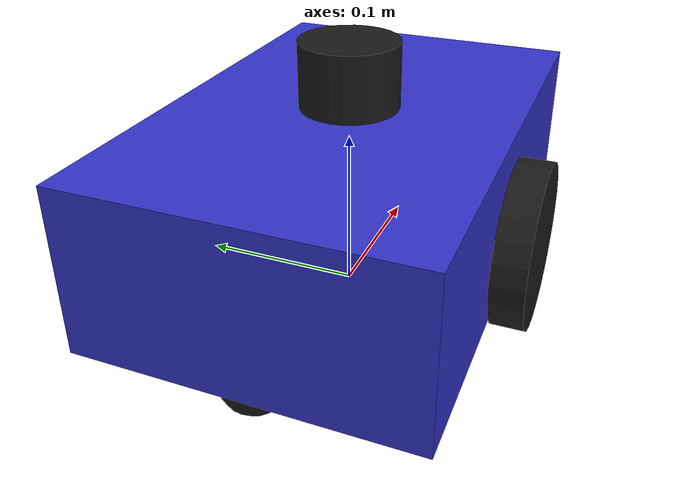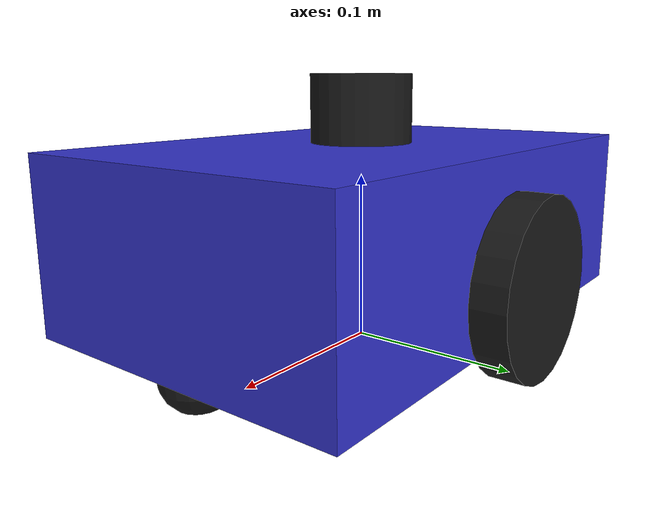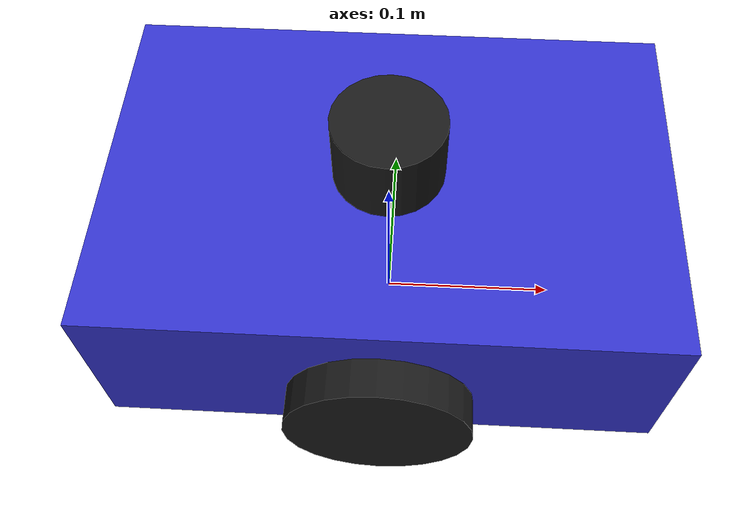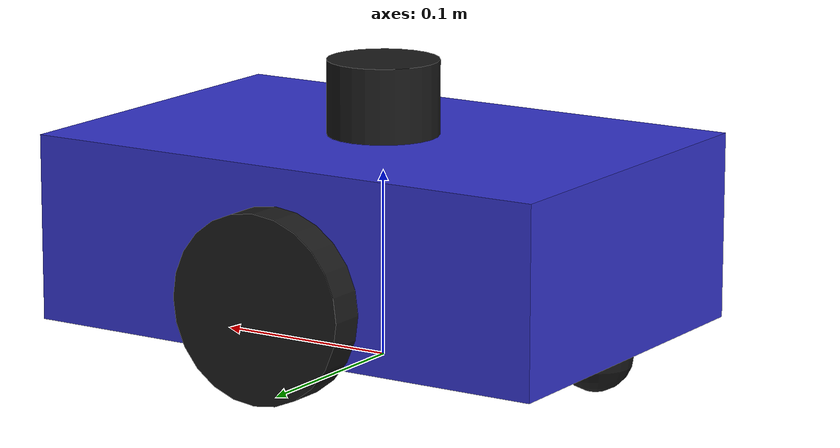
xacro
<?xml version="1.0"?>
<robot name="diffdrive_robot" xmlns:xacro="http://www.ros.org/wiki/xacro">

    <xacro:property name="chassis_length" value="0.3"/>
    <xacro:property name="chassis_width" value="0.2"/>
    <xacro:property name="chassis_height" value="0.1"/>
    <xacro:property name="chassis_mass" value="2.0"/>

    <xacro:property name="wheel_radius" value="0.05"/>
    <xacro:property name="wheel_width" value="0.02"/>
    <xacro:property name="wheel_mass" value="0.2"/>
    <xacro:property name="wheel_y_offset" value="${chassis_width/2 + wheel_width/2}"/>

    <xacro:property name="ground_clearance" value="0.02"/>
    <xacro:property name="base_link_height" value="${ground_clearance + chassis_height/2}"/>
    <xacro:property name="wheel_z_offset" value="${wheel_radius - base_link_height}"/>

    <xacro:property name="wheel_ixx" value="${(1/12) * wheel_mass * (3*wheel_radius*wheel_radius + wheel_width*wheel_width)}"/>
    <xacro:property name="wheel_izz" value="${0.5 * wheel_mass * wheel_radius * wheel_radius}"/>

    <xacro:property name="caster_radius" value="0.02"/>
    <xacro:property name="caster_mass" value="0.05"/>
    <xacro:property name="caster_x_offset" value="${-(chassis_length/2 - caster_radius)}"/>
    <xacro:property name="front_caster_x_offset" value="${chassis_length/2 - caster_radius}"/>
    <xacro:property name="caster_z_offset" value="${caster_radius - base_link_height}"/>
    <xacro:property name="caster_inertia" value="${(2/5) * caster_mass * caster_radius * caster_radius}"/>

    <xacro:property name="lidar_radius" value="0.03"/>
    <xacro:property name="lidar_height" value="0.04"/>
    <xacro:property name="lidar_mass" value="0.05"/>
    <xacro:property name="lidar_z_offset" value="${chassis_height/2 + lidar_height/2}"/>
    <xacro:property name="lidar_ixx" value="${(1/12) * lidar_mass * (3*lidar_radius*lidar_radius + lidar_height*lidar_height)}"/>
    <xacro:property name="lidar_izz" value="${0.5 * lidar_mass * lidar_radius * lidar_radius}"/>

    <material name="blue">
        <color rgba="0.2 0.2 0.8 1.0"/>
    </material>
    <material name="black">
        <color rgba="0.1 0.1 0.1 1.0"/>
    </material>

    <link name="base_footprint"/>

    <joint name="base_footprint_joint" type="fixed">
        <parent link="base_footprint"/>
        <child link="base_link"/>
        <origin xyz="0 0 ${base_link_height}" rpy="0 0 0"/>
    </joint>

    <link name="base_link">
        <visual>
            <geometry>
                <box size="${chassis_length} ${chassis_width} ${chassis_height}"/>
            </geometry>
            <material name="blue"/>
        </visual>
        <collision>
            <geometry>
                <box size="${chassis_length} ${chassis_width} ${chassis_height}"/>
            </geometry>
        </collision>
        <inertial>
            <mass value="${chassis_mass}"/>
            <inertia ixx="0.01" ixy="0.0" ixz="0.0" iyy="0.02" iyz="0.0" izz="0.02"/>
        </inertial>
    </link>

    <link name="left_wheel">
        <visual>
            <origin xyz="0 0 0" rpy="1.5708 0 0"/>
            <geometry>
                <cylinder radius="${wheel_radius}" length="${wheel_width}"/>
            </geometry>
            <material name="black"/>
        </visual>
        <collision>
            <origin xyz="0 0 0" rpy="1.5708 0 0"/>
            <geometry>
                <cylinder radius="${wheel_radius}" length="${wheel_width}"/>
            </geometry>
        </collision>
        <inertial>
            <origin xyz="0 0 0" rpy="1.5708 0 0"/>
            <mass value="${wheel_mass}"/>
            <inertia
                ixx="${(1/12) * wheel_mass * (3*wheel_radius*wheel_radius + wheel_width*wheel_width)}"
                ixy="0.0" ixz="0.0"
                iyy="${(1/12) * wheel_mass * (3*wheel_radius*wheel_radius + wheel_width*wheel_width)}"
                iyz="0.0"
                izz="${0.5 * wheel_mass * wheel_radius * wheel_radius}"/>
        </inertial>
    </link>

    <joint name="left_wheel_joint" type="continuous">
        <parent link="base_link"/>
        <child link="left_wheel"/>
        <origin xyz="0 ${wheel_y_offset} ${wheel_z_offset}" rpy="0 0 0"/>
        <axis xyz="0 1 0"/>
    </joint>

    <link name="right_wheel">
        <visual>
            <origin xyz="0 0 0" rpy="1.5708 0 0"/>
            <geometry>
                <cylinder radius="${wheel_radius}" length="${wheel_width}"/>
            </geometry>
            <material name="black"/>
        </visual>
        <collision>
            <origin xyz="0 0 0" rpy="1.5708 0 0"/>
            <geometry>
                <cylinder radius="${wheel_radius}" length="${wheel_width}"/>
            </geometry>
        </collision>
        <inertial>
            <origin xyz="0 0 0" rpy="1.5708 0 0"/>
            <mass value="${wheel_mass}"/>
            <inertia ixx="${wheel_ixx}" ixy="0.0" ixz="0.0" iyy="${wheel_ixx}" iyz="0.0" izz="${wheel_izz}"/>
        </inertial>
    </link>

    <joint name="right_wheel_joint" type="continuous">
        <parent link="base_link"/>
        <child link="right_wheel"/>
        <origin xyz="0 ${-wheel_y_offset} ${wheel_z_offset}" rpy="0 0 0"/>
        <axis xyz="0 1 0"/>
    </joint>

    <link name="caster_wheel">
        <visual>
            <geometry>
                <sphere radius="${caster_radius}"/>
            </geometry>
            <material name="black"/>
        </visual>
        <collision>
            <geometry>
                <sphere radius="${caster_radius}"/>
            </geometry>
        </collision>
        <inertial>
            <mass value="${caster_mass}"/>
            <inertia ixx="${caster_inertia}" ixy="0.0" ixz="0.0" iyy="${caster_inertia}" iyz="0.0" izz="${caster_inertia}"/>
        </inertial>
    </link>

    <joint name="caster_wheel_joint" type="fixed">
        <parent link="base_link"/>
        <child link="caster_wheel"/>
        <origin xyz="${caster_x_offset} 0 ${caster_z_offset}" rpy="0 0 0"/>
    </joint>

    <link name="front_caster_wheel">
        <visual>
            <geometry>
                <sphere radius="${caster_radius}"/>
            </geometry>
            <material name="black"/>
        </visual>
        <collision>
            <geometry>
                <sphere radius="${caster_radius}"/>
            </geometry>
        </collision>
        <inertial>
            <mass value="${caster_mass}"/>
            <inertia ixx="${caster_inertia}" ixy="0.0" ixz="0.0" iyy="${caster_inertia}" iyz="0.0" izz="${caster_inertia}"/>
        </inertial>
    </link>

    <joint name="front_caster_wheel_joint" type="fixed">
        <parent link="base_link"/>
        <child link="front_caster_wheel"/>
        <origin xyz="${front_caster_x_offset} 0 ${caster_z_offset}" rpy="0 0 0"/>
    </joint>

    <link name="lidar_link">
        <visual>
            <geometry>
                <cylinder radius="${lidar_radius}" length="${lidar_height}"/>
            </geometry>
            <material name="black"/>
        </visual>
        <collision>
            <geometry>
                <cylinder radius="${lidar_radius}" length="${lidar_height}"/>
            </geometry>
        </collision>
        <inertial>
            <mass value="${lidar_mass}"/>
            <inertia ixx="${lidar_ixx}" ixy="0.0" ixz="0.0" iyy="${lidar_ixx}" iyz="0.0" izz="${lidar_izz}"/>
        </inertial>
    </link>

    <joint name="lidar_joint" type="fixed">
        <parent link="base_link"/>
        <child link="lidar_link"/>
        <origin xyz="0 0 ${lidar_z_offset}" rpy="0 0 0"/>
    </joint>

    <gazebo reference="caster_wheel">
        <mu1>0.01</mu1>
        <mu2>0.01</mu2>
    </gazebo>

    <gazebo reference="front_caster_wheel">
        <mu1>0.01</mu1>
        <mu2>0.01</mu2>
    </gazebo>

    <gazebo reference="left_wheel">
        <mu1>1.0</mu1>
        <mu2>1.0</mu2>
    </gazebo>

    <gazebo reference="right_wheel">
        <mu1>1.0</mu1>
        <mu2>1.0</mu2>
    </gazebo>

    <gazebo>
        <plugin filename="gz-sim-diff-drive-system" name="gz::sim::systems::DiffDrive">
            <left_joint>left_wheel_joint</left_joint>
            <right_joint>right_wheel_joint</right_joint>
            <wheel_separation>0.22</wheel_separation>
            <wheel_radius>0.05</wheel_radius>
            <max_linear_acceleration>1.0</max_linear_acceleration>
            <topic>cmd_vel</topic>
            <odom_topic>odom</odom_topic>
            <frame_id>odom</frame_id>
            <child_frame_id>base_footprint</child_frame_id>
            <tf_topic>tf</tf_topic>
        </plugin>
    </gazebo>

    <gazebo reference="lidar_link">
        <sensor name="lidar" type="gpu_lidar">
        <gz_frame_id>lidar_link</gz_frame_id>
        <pose>0 0 0 0 0 0</pose>
        <topic>scan</topic>
        <update_rate>10</update_rate>
        <always_on>true</always_on>
        <visualize>true</visualize>
        <lidar>
            <scan>
            <horizontal>
                <samples>360</samples>
                <resolution>1</resolution>
                <min_angle>-3.14159</min_angle>
                <max_angle>3.14159</max_angle>
            </horizontal>
            </scan>
            <range>
            <min>0.12</min>
            <max>10.0</max>
            <resolution>0.01</resolution>
            </range>
            <noise>
            <type>gaussian</type>
            <mean>0.0</mean>
            <stddev>0.01</stddev>
            </noise>
        </lidar>
        </sensor>
    </gazebo>

</robot>
